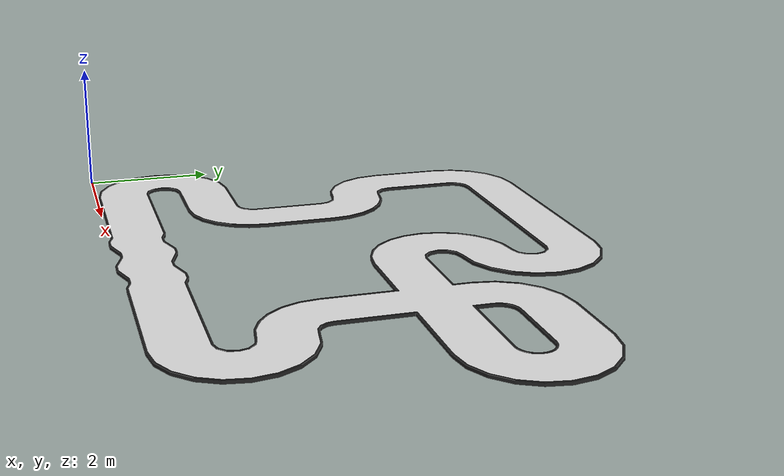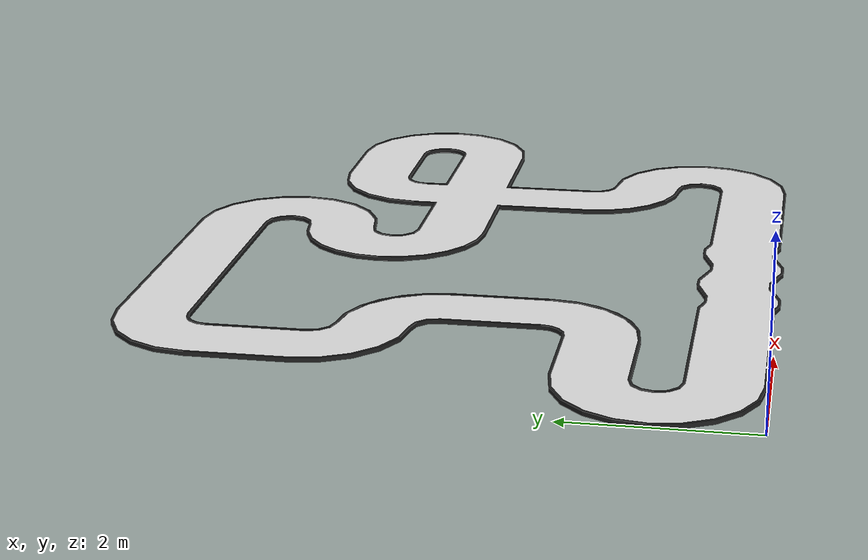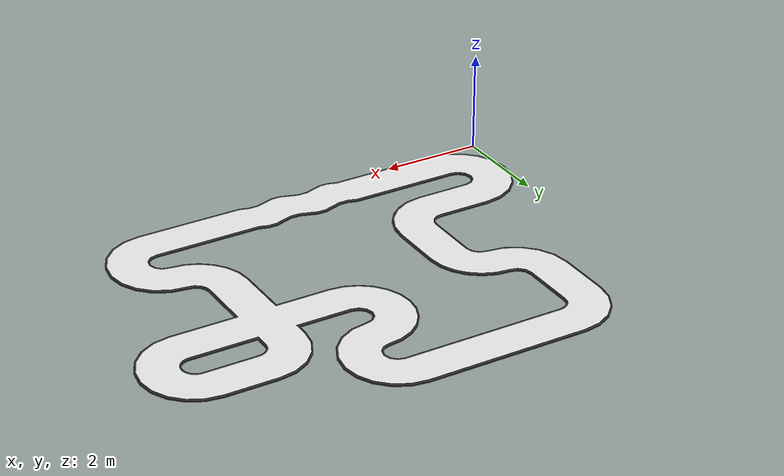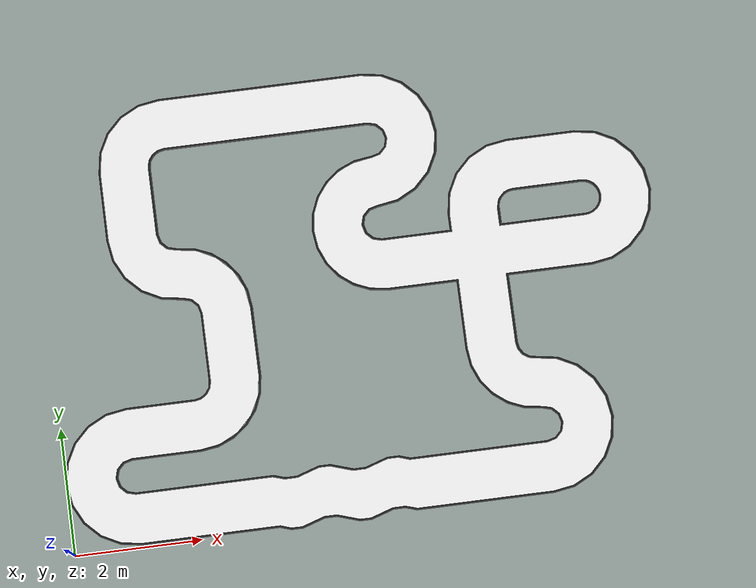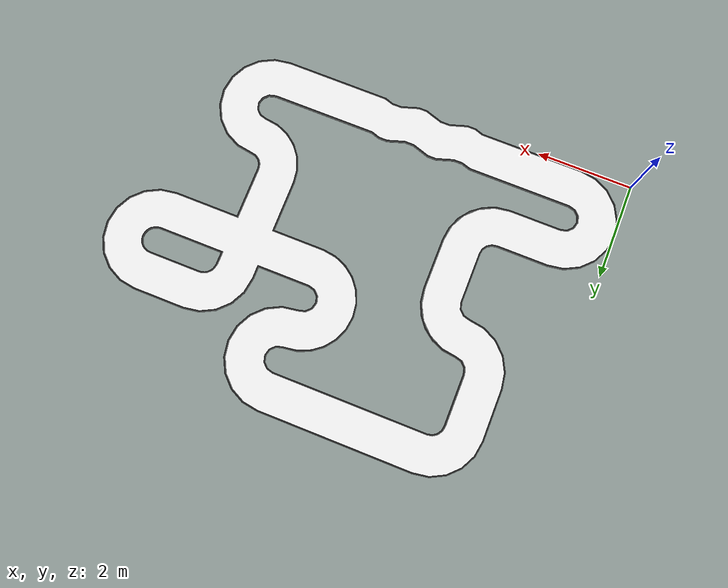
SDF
<?xml version="1.0" ?>
<sdf version="1.5">
  <model name='nxp_raceway'>
    <pose>0 0 0 0 0 0</pose>
    <link name='nxp_raceway_link'>
      <visual name='nxp_raceway_inside_visual'>
        <cast_shadows>0</cast_shadows>
        <pose>0 0 -.008 0 0 0</pose>
        <geometry>
          <mesh>
            <scale>1.5 1.5 1</scale>
            <uri>model://nxp_raceway_2/meshes/CourseInside.stl</uri>
          </mesh>
        </geometry>
        <material>
          <script>
            <name>Gazebo/White</name>
            <uri>file://media/materials/scripts/gazebo.material</uri>
          </script>
        </material>
      </visual>
      <visual name='nxp_raceway_border_visual'>
        <cast_shadows>0</cast_shadows>
        <pose>-.02 -.03 0 0 0 0</pose>
        <geometry>
          <mesh>
            <scale>1.5 1.5 1</scale>
            <uri>model://nxp_raceway_2/meshes/CourseBorder.stl</uri>
          </mesh>
        </geometry>
        <material>
          <script>
            <name>Gazebo/Black</name>
            <uri>file://media/materials/scripts/gazebo.material</uri>
          </script>
        </material>
      </visual>
    </link>
    <static>1</static>
  </model>
</sdf>
